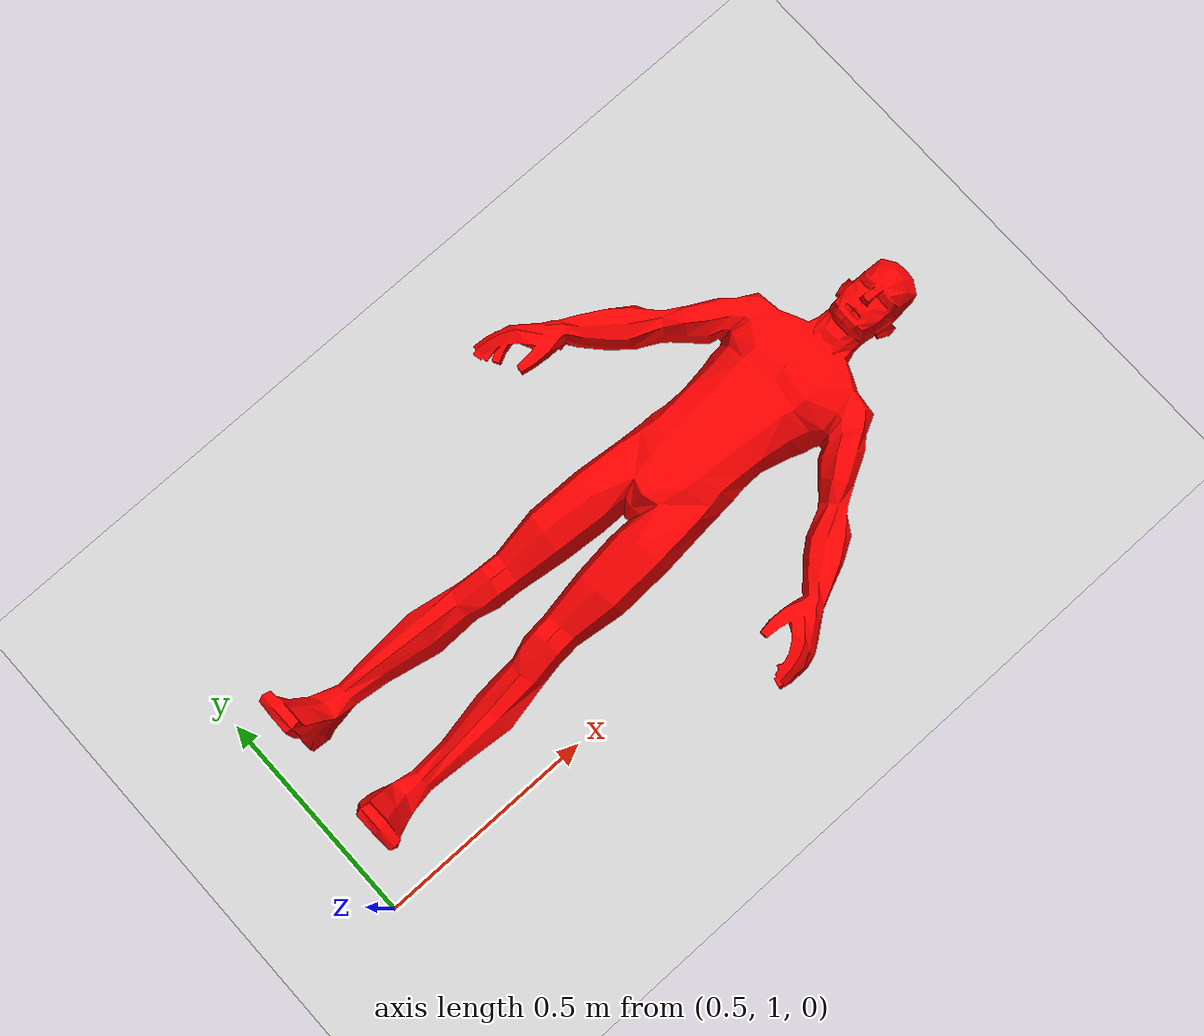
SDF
<?xml version="1.0"?>
<sdf version="1.5">
  <world name="H_world">
    <include>
      <uri>model://ground_plane</uri>
    </include>
    <include>
      <uri>model://sun</uri>
    </include>

    <include>
      <static>true</static>
      <uri>model://2020_bonequinho_50kg</uri>
      <name>bonequinho_50kg</name>
      <pose>0.5 3.5 8.2 -1.57 0 -1.57</pose>
    </include>

  </world>
</sdf>

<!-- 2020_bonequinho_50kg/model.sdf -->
<sdf version='1.6'>
  <model name='bonequinho_50kg'>
    <link name='link_0'>
      <inertial>
        <mass>50</mass>
        <inertia>
          <ixx>0</ixx>
          <ixy>0</ixy>
          <ixz>0</ixz>
          <iyy>0</iyy>
          <iyz>0</iyz>
          <izz>0</izz>
        </inertia>
        <pose frame=''>0 0 0 0 -0 0</pose>
      </inertial>
      <pose frame=''>-0 0 0 0 -0 0</pose>
      <self_collide>0</self_collide>
      <enable_wind>0</enable_wind>
      <kinematic>0</kinematic>
      <gravity>1</gravity>
      <visual name='visual'>
        <pose frame=''>0 0 0 0 -0 0</pose>
        <geometry>
          <mesh>
            <uri>model://2020_bonequinho_50kg/meshes/bonequinho.dae</uri>
            <scale>1 1 1</scale>
          </mesh>
        </geometry>
        <material>
          <lighting>1</lighting>
          <script>
            <uri>file://media/materials/scripts/gazebo.material</uri>
            <name>Gazebo/Grey</name>
          </script>
          <shader type='vertex'>
            <normal_map>__default__</normal_map>
          </shader>
          <ambient>1 0 0 1</ambient>
          <diffuse>0.7 0.7 0.7 1</diffuse>
          <specular>0.01 0.01 0.01 1</specular>
          <emissive>1 0 0 1</emissive>
        </material>
        <transparency>0</transparency>
        <cast_shadows>1</cast_shadows>
      </visual>
      <collision name='collision'>
        <laser_retro>0</laser_retro>
        <max_contacts>10</max_contacts>
        <pose frame=''>0 0 0 0 -0 0</pose>
        <geometry>
          <mesh>
            <uri>model://2020_bonequinho_50kg/meshes/bonequinho.dae</uri>
            <scale>1 1 1</scale>
          </mesh>
        </geometry>
        <surface>
          <friction>
            <ode>
              <mu>1</mu>
              <mu2>1</mu2>
              <fdir1>0 0 0</fdir1>
              <slip1>0</slip1>
              <slip2>0</slip2>
            </ode>
            <torsional>
              <coefficient>1</coefficient>
              <patch_radius>0</patch_radius>
              <surface_radius>0</surface_radius>
              <use_patch_radius>1</use_patch_radius>
              <ode>
                <slip>0</slip>
              </ode>
            </torsional>
          </friction>
          <bounce>
            <restitution_coefficient>0</restitution_coefficient>
            <threshold>1e+06</threshold>
          </bounce>
          <contact>
            <collide_without_contact>0</collide_without_contact>
            <collide_without_contact_bitmask>1</collide_without_contact_bitmask>
            <collide_bitmask>1</collide_bitmask>
            <ode>
              <soft_cfm>0</soft_cfm>
              <soft_erp>0.2</soft_erp>
              <kp>1e+13</kp>
              <kd>1</kd>
              <max_vel>0.01</max_vel>
              <min_depth>0</min_depth>
            </ode>
            <bullet>
              <split_impulse>1</split_impulse>
              <split_impulse_penetration_threshold>-0.01</split_impulse_penetration_threshold>
              <soft_cfm>0</soft_cfm>
              <soft_erp>0.2</soft_erp>
              <kp>1e+13</kp>
              <kd>1</kd>
            </bullet>
          </contact>
        </surface>
      </collision>
    </link>
    <static>0</static>
    <allow_auto_disable>1</allow_auto_disable>
  </model>
</sdf>
